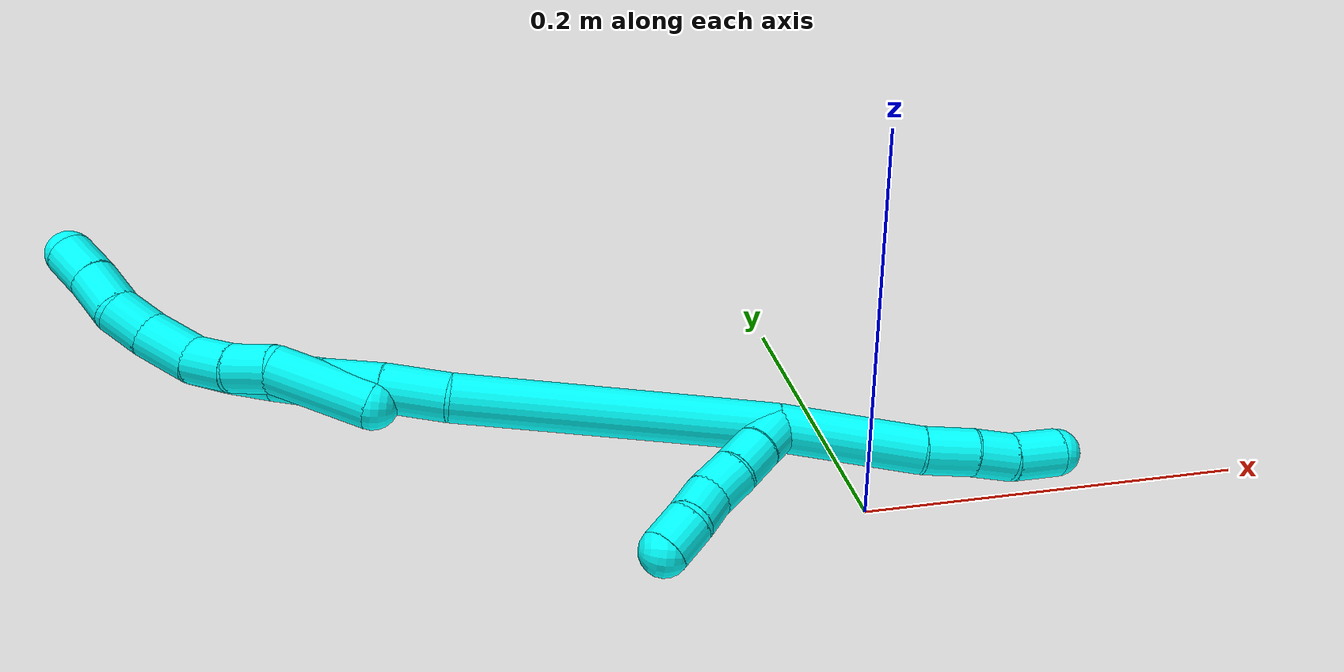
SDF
<sdf version="1.7">
 <world name="default">
  <model name="3">
   <static>0</static>
   <link name="3">
    <collision name="collision-cylinder-e_1_2_8">
     <pose>-0.001079 -0.003139 -0.037483 3.05804 -0.028667 -0.660728</pose>
     <geometry><cylinder><radius>0.0125</radius><length>0.075258</length></cylinder></geometry>
     <surface>
      <friction><ode><mu>1.16</mu><mu2>1.16</mu2><slip1>0</slip1><slip2>0</slip2></ode></friction>
      <contact><ode><kp>1e+06</kp><kd>1</kd><max_vel>0</max_vel><min_depth>0.001</min_depth></ode></contact>
     </surface>
    </collision>
    <visual name="visual-cylinder-e_1_2_8">
     <pose>-0.001079 -0.003139 -0.037483 3.05804 -0.028667 -0.660728</pose>
     <geometry><cylinder><radius>0.0125</radius><length>0.075258</length></cylinder></geometry>
     <material><ambient>0.003922 1 0.996078 1</ambient></material>
    </visual>
    <collision name="collision-cylinder-e_2_8_9">
     <pose>-0.001828 -0.005573 -0.088649 -3.09008 0.024031 -0.872784</pose>
     <geometry><cylinder><radius>0.0125</radius><length>0.027413</length></cylinder></geometry>
     <surface>
      <friction><ode><mu>1.16</mu><mu2>1.16</mu2><slip1>0</slip1><slip2>0</slip2></ode></friction>
      <contact><ode><kp>1e+06</kp><kd>1</kd><max_vel>0</max_vel><min_depth>0.001</min_depth></ode></contact>
     </surface>
    </collision>
    <visual name="visual-cylinder-e_2_8_9">
     <pose>-0.001828 -0.005573 -0.088649 -3.09008 0.024031 -0.872784</pose>
     <geometry><cylinder><radius>0.0125</radius><length>0.027413</length></cylinder></geometry>
     <material><ambient>0.003922 1 0.996078 1</ambient></material>
    </visual>
    <collision name="collision-cylinder-e_3_9_10">
     <pose>-0.00223 -0.004145 -0.112755 -3.07244 -0.069939 1.58215</pose>
     <geometry><cylinder><radius>0.0125</radius><length>0.020944</length></cylinder></geometry>
     <surface>
      <friction><ode><mu>1.16</mu><mu2>1.16</mu2><slip1>0</slip1><slip2>0</slip2></ode></friction>
      <contact><ode><kp>1e+06</kp><kd>1</kd><max_vel>0</max_vel><min_depth>0.001</min_depth></ode></contact>
     </surface>
    </collision>
    <visual name="visual-cylinder-e_3_9_10">
     <pose>-0.00223 -0.004145 -0.112755 -3.07244 -0.069939 1.58215</pose>
     <geometry><cylinder><radius>0.0125</radius><length>0.020944</length></cylinder></geometry>
     <material><ambient>0.003922 1 0.996078 1</ambient></material>
    </visual>
    <collision name="collision-cylinder-e_4_10_6">
     <pose>-0.001833 -0.000539 -0.136 -2.92037 0.085685 -0.736721</pose>
     <geometry><cylinder><radius>0.0125</radius><length>0.026385</length></cylinder></geometry>
     <surface>
      <friction><ode><mu>1.16</mu><mu2>1.16</mu2><slip1>0</slip1><slip2>0</slip2></ode></friction>
      <contact><ode><kp>1e+06</kp><kd>1</kd><max_vel>0</max_vel><min_depth>0.001</min_depth></ode></contact>
     </surface>
    </collision>
    <visual name="visual-cylinder-e_4_10_6">
     <pose>-0.001833 -0.000539 -0.136 -2.92037 0.085685 -0.736721</pose>
     <geometry><cylinder><radius>0.0125</radius><length>0.026385</length></cylinder></geometry>
     <material><ambient>0.003922 1 0.996078 1</ambient></material>
    </visual>
    <collision name="collision-cylinder-e_1_2_11">
     <pose>-0.002275 -0.007803 0.005826 0.929414 -0.2295 -0.115434</pose>
     <geometry><cylinder><radius>0.0125</radius><length>0.02</length></cylinder></geometry>
     <surface>
      <friction><ode><mu>1.16</mu><mu2>1.16</mu2><slip1>0</slip1><slip2>0</slip2></ode></friction>
      <contact><ode><kp>1e+06</kp><kd>1</kd><max_vel>0</max_vel><min_depth>0.001</min_depth></ode></contact>
     </surface>
    </collision>
    <visual name="visual-cylinder-e_1_2_11">
     <pose>-0.002275 -0.007803 0.005826 0.929414 -0.2295 -0.115434</pose>
     <geometry><cylinder><radius>0.0125</radius><length>0.02</length></cylinder></geometry>
     <material><ambient>0.003922 1 0.996078 1</ambient></material>
    </visual>
    <collision name="collision-cylinder-e_2_11_12">
     <pose>-0.007482 -0.023082 0.017611 0.897912 -0.297613 -0.144198</pose>
     <geometry><cylinder><radius>0.0125</radius><length>0.02</length></cylinder></geometry>
     <surface>
      <friction><ode><mu>1.16</mu><mu2>1.16</mu2><slip1>0</slip1><slip2>0</slip2></ode></friction>
      <contact><ode><kp>1e+06</kp><kd>1</kd><max_vel>0</max_vel><min_depth>0.001</min_depth></ode></contact>
     </surface>
    </collision>
    <visual name="visual-cylinder-e_2_11_12">
     <pose>-0.007482 -0.023082 0.017611 0.897912 -0.297613 -0.144198</pose>
     <geometry><cylinder><radius>0.0125</radius><length>0.02</length></cylinder></geometry>
     <material><ambient>0.003922 1 0.996078 1</ambient></material>
    </visual>
    <collision name="collision-cylinder-e_3_12_13">
     <pose>-0.01417 -0.037089 0.030146 0.781886 -0.384997 -0.160324</pose>
     <geometry><cylinder><radius>0.0125</radius><length>0.02</length></cylinder></geometry>
     <surface>
      <friction><ode><mu>1.16</mu><mu2>1.16</mu2><slip1>0</slip1><slip2>0</slip2></ode></friction>
      <contact><ode><kp>1e+06</kp><kd>1</kd><max_vel>0</max_vel><min_depth>0.001</min_depth></ode></contact>
     </surface>
    </collision>
    <visual name="visual-cylinder-e_3_12_13">
     <pose>-0.01417 -0.037089 0.030146 0.781886 -0.384997 -0.160324</pose>
     <geometry><cylinder><radius>0.0125</radius><length>0.02</length></cylinder></geometry>
     <material><ambient>0.003922 1 0.996078 1</ambient></material>
    </visual>
    <collision name="collision-cylinder-e_4_13_14">
     <pose>-0.020142 -0.05207 0.041586 1.04853 -0.223518 -0.129606</pose>
     <geometry><cylinder><radius>0.0125</radius><length>0.02</length></cylinder></geometry>
     <surface>
      <friction><ode><mu>1.16</mu><mu2>1.16</mu2><slip1>0</slip1><slip2>0</slip2></ode></friction>
      <contact><ode><kp>1e+06</kp><kd>1</kd><max_vel>0</max_vel><min_depth>0.001</min_depth></ode></contact>
     </surface>
    </collision>
    <visual name="visual-cylinder-e_4_13_14">
     <pose>-0.020142 -0.05207 0.041586 1.04853 -0.223518 -0.129606</pose>
     <geometry><cylinder><radius>0.0125</radius><length>0.02</length></cylinder></geometry>
     <material><ambient>0.003922 1 0.996078 1</ambient></material>
    </visual>
    <collision name="collision-cylinder-e_5_14_5">
     <pose>-0.0266 -0.067426 0.052311 0.867008 -0.437944 -0.20529</pose>
     <geometry><cylinder><radius>0.0125</radius><length>0.02</length></cylinder></geometry>
     <surface>
      <friction><ode><mu>1.16</mu><mu2>1.16</mu2><slip1>0</slip1><slip2>0</slip2></ode></friction>
      <contact><ode><kp>1e+06</kp><kd>1</kd><max_vel>0</max_vel><min_depth>0.001</min_depth></ode></contact>
     </surface>
    </collision>
    <visual name="visual-cylinder-e_5_14_5">
     <pose>-0.0266 -0.067426 0.052311 0.867008 -0.437944 -0.20529</pose>
     <geometry><cylinder><radius>0.0125</radius><length>0.02</length></cylinder></geometry>
     <material><ambient>0.003922 1 0.996078 1</ambient></material>
    </visual>
    <collision name="collision-cylinder-e_1_2_15">
     <pose>-3.8e-05 -0.000196 0.082653 0.00237 -0.000457 -1e-06</pose>
     <geometry><cylinder><radius>0.0125</radius><length>0.165307</length></cylinder></geometry>
     <surface>
      <friction><ode><mu>1.16</mu><mu2>1.16</mu2><slip1>0</slip1><slip2>0</slip2></ode></friction>
      <contact><ode><kp>1e+06</kp><kd>1</kd><max_vel>0</max_vel><min_depth>0.001</min_depth></ode></contact>
     </surface>
    </collision>
    <visual name="visual-cylinder-e_1_2_15">
     <pose>-3.8e-05 -0.000196 0.082653 0.00237 -0.000457 -1e-06</pose>
     <geometry><cylinder><radius>0.0125</radius><length>0.165307</length></cylinder></geometry>
     <material><ambient>0.003922 1 0.996078 1</ambient></material>
    </visual>
    <collision name="collision-cylinder-e_2_15_16">
     <pose>-0.000651 0.002735 0.18203 -0.18484 -0.033833 0.003136</pose>
     <geometry><cylinder><radius>0.0125</radius><length>0.034046</length></cylinder></geometry>
     <surface>
      <friction><ode><mu>1.16</mu><mu2>1.16</mu2><slip1>0</slip1><slip2>0</slip2></ode></friction>
      <contact><ode><kp>1e+06</kp><kd>1</kd><max_vel>0</max_vel><min_depth>0.001</min_depth></ode></contact>
     </surface>
    </collision>
    <visual name="visual-cylinder-e_2_15_16">
     <pose>-0.000651 0.002735 0.18203 -0.18484 -0.033833 0.003136</pose>
     <geometry><cylinder><radius>0.0125</radius><length>0.034046</length></cylinder></geometry>
     <material><ambient>0.003922 1 0.996078 1</ambient></material>
    </visual>
    <collision name="collision-cylinder-e_3_16_17">
     <pose>-0.002702 0.008134 0.213934 -0.148585 -0.095793 0.007135</pose>
     <geometry><cylinder><radius>0.0125</radius><length>0.030842</length></cylinder></geometry>
     <surface>
      <friction><ode><mu>1.16</mu><mu2>1.16</mu2><slip1>0</slip1><slip2>0</slip2></ode></friction>
      <contact><ode><kp>1e+06</kp><kd>1</kd><max_vel>0</max_vel><min_depth>0.001</min_depth></ode></contact>
     </surface>
    </collision>
    <visual name="visual-cylinder-e_3_16_17">
     <pose>-0.002702 0.008134 0.213934 -0.148585 -0.095793 0.007135</pose>
     <geometry><cylinder><radius>0.0125</radius><length>0.030842</length></cylinder></geometry>
     <material><ambient>0.003922 1 0.996078 1</ambient></material>
    </visual>
    <collision name="collision-cylinder-e_4_17_18">
     <pose>-0.006133 0.015081 0.241444 -0.36241 -0.147263 0.027028</pose>
     <geometry><cylinder><radius>0.0125</radius><length>0.026658</length></cylinder></geometry>
     <surface>
      <friction><ode><mu>1.16</mu><mu2>1.16</mu2><slip1>0</slip1><slip2>0</slip2></ode></friction>
      <contact><ode><kp>1e+06</kp><kd>1</kd><max_vel>0</max_vel><min_depth>0.001</min_depth></ode></contact>
     </surface>
    </collision>
    <visual name="visual-cylinder-e_4_17_18">
     <pose>-0.006133 0.015081 0.241444 -0.36241 -0.147263 0.027028</pose>
     <geometry><cylinder><radius>0.0125</radius><length>0.026658</length></cylinder></geometry>
     <material><ambient>0.003922 1 0.996078 1</ambient></material>
    </visual>
    <collision name="collision-cylinder-e_5_18_19">
     <pose>-0.008064 0.021522 0.264898 -0.157481 0.002235 -0.000176</pose>
     <geometry><cylinder><radius>0.0125</radius><length>0.02253</length></cylinder></geometry>
     <surface>
      <friction><ode><mu>1.16</mu><mu2>1.16</mu2><slip1>0</slip1><slip2>0</slip2></ode></friction>
      <contact><ode><kp>1e+06</kp><kd>1</kd><max_vel>0</max_vel><min_depth>0.001</min_depth></ode></contact>
     </surface>
    </collision>
    <visual name="visual-cylinder-e_5_18_19">
     <pose>-0.008064 0.021522 0.264898 -0.157481 0.002235 -0.000176</pose>
     <geometry><cylinder><radius>0.0125</radius><length>0.02253</length></cylinder></geometry>
     <material><ambient>0.003922 1 0.996078 1</ambient></material>
    </visual>
    <collision name="collision-cylinder-e_6_19_1">
     <pose>-0.007935 0.026149 0.285927 -0.281179 0.010005 -0.001416</pose>
     <geometry><cylinder><radius>0.0125</radius><length>0.020617</length></cylinder></geometry>
     <surface>
      <friction><ode><mu>1.16</mu><mu2>1.16</mu2><slip1>0</slip1><slip2>0</slip2></ode></friction>
      <contact><ode><kp>1e+06</kp><kd>1</kd><max_vel>0</max_vel><min_depth>0.001</min_depth></ode></contact>
     </surface>
    </collision>
    <visual name="visual-cylinder-e_6_19_1">
     <pose>-0.007935 0.026149 0.285927 -0.281179 0.010005 -0.001416</pose>
     <geometry><cylinder><radius>0.0125</radius><length>0.020617</length></cylinder></geometry>
     <material><ambient>0.003922 1 0.996078 1</ambient></material>
    </visual>
    <collision name="collision-cylinder-e_1_1_20">
     <pose>-0.005231 0.035638 0.308415 -0.484767 0.180861 -0.044832</pose>
     <geometry><cylinder><radius>0.0125</radius><length>0.02892</length></cylinder></geometry>
     <surface>
      <friction><ode><mu>1.16</mu><mu2>1.16</mu2><slip1>0</slip1><slip2>0</slip2></ode></friction>
      <contact><ode><kp>1e+06</kp><kd>1</kd><max_vel>0</max_vel><min_depth>0.001</min_depth></ode></contact>
     </surface>
    </collision>
    <visual name="visual-cylinder-e_1_1_20">
     <pose>-0.005231 0.035638 0.308415 -0.484767 0.180861 -0.044832</pose>
     <geometry><cylinder><radius>0.0125</radius><length>0.02892</length></cylinder></geometry>
     <material><ambient>0.003922 1 0.996078 1</ambient></material>
    </visual>
    <collision name="collision-cylinder-e_2_20_21">
     <pose>0.000875 0.047188 0.330522 -0.477077 0.316069 -0.077465</pose>
     <geometry><cylinder><radius>0.0125</radius><length>0.022553</length></cylinder></geometry>
     <surface>
      <friction><ode><mu>1.16</mu><mu2>1.16</mu2><slip1>0</slip1><slip2>0</slip2></ode></friction>
      <contact><ode><kp>1e+06</kp><kd>1</kd><max_vel>0</max_vel><min_depth>0.001</min_depth></ode></contact>
     </surface>
    </collision>
    <visual name="visual-cylinder-e_2_20_21">
     <pose>0.000875 0.047188 0.330522 -0.477077 0.316069 -0.077465</pose>
     <geometry><cylinder><radius>0.0125</radius><length>0.022553</length></cylinder></geometry>
     <material><ambient>0.003922 1 0.996078 1</ambient></material>
    </visual>
    <collision name="collision-cylinder-e_3_21_22">
     <pose>0.008516 0.060639 0.348402 -0.795429 0.333415 -0.141146</pose>
     <geometry><cylinder><radius>0.0125</radius><length>0.025276</length></cylinder></geometry>
     <surface>
      <friction><ode><mu>1.16</mu><mu2>1.16</mu2><slip1>0</slip1><slip2>0</slip2></ode></friction>
      <contact><ode><kp>1e+06</kp><kd>1</kd><max_vel>0</max_vel><min_depth>0.001</min_depth></ode></contact>
     </surface>
    </collision>
    <visual name="visual-cylinder-e_3_21_22">
     <pose>0.008516 0.060639 0.348402 -0.795429 0.333415 -0.141146</pose>
     <geometry><cylinder><radius>0.0125</radius><length>0.025276</length></cylinder></geometry>
     <material><ambient>0.003922 1 0.996078 1</ambient></material>
    </visual>
    <collision name="collision-cylinder-e_4_22_4">
     <pose>0.015941 0.076661 0.365019 -0.73697 0.286759 -0.111373</pose>
     <geometry><cylinder><radius>0.0125</radius><length>0.02325</length></cylinder></geometry>
     <surface>
      <friction><ode><mu>1.16</mu><mu2>1.16</mu2><slip1>0</slip1><slip2>0</slip2></ode></friction>
      <contact><ode><kp>1e+06</kp><kd>1</kd><max_vel>0</max_vel><min_depth>0.001</min_depth></ode></contact>
     </surface>
    </collision>
    <visual name="visual-cylinder-e_4_22_4">
     <pose>0.015941 0.076661 0.365019 -0.73697 0.286759 -0.111373</pose>
     <geometry><cylinder><radius>0.0125</radius><length>0.02325</length></cylinder></geometry>
     <material><ambient>0.003922 1 0.996078 1</ambient></material>
    </visual>
    <collision name="collision-cylinder-e_1_1_23">
     <pose>-0.006659 0.024238 0.285587 2.70564 0.103437 0.459163</pose>
     <geometry><cylinder><radius>0.0125</radius><length>0.02272</length></cylinder></geometry>
     <surface>
      <friction><ode><mu>1.16</mu><mu2>1.16</mu2><slip1>0</slip1><slip2>0</slip2></ode></friction>
      <contact><ode><kp>1e+06</kp><kd>1</kd><max_vel>0</max_vel><min_depth>0.001</min_depth></ode></contact>
     </surface>
    </collision>
    <visual name="visual-cylinder-e_1_1_23">
     <pose>-0.006659 0.024238 0.285587 2.70564 0.103437 0.459163</pose>
     <geometry><cylinder><radius>0.0125</radius><length>0.02272</length></cylinder></geometry>
     <material><ambient>0.003922 1 0.996078 1</ambient></material>
    </visual>
    <collision name="collision-cylinder-e_2_23_24">
     <pose>-0.003033 0.016363 0.264336 2.86678 0.211284 1.30837</pose>
     <geometry><cylinder><radius>0.0125</radius><length>0.023396</length></cylinder></geometry>
     <surface>
      <friction><ode><mu>1.16</mu><mu2>1.16</mu2><slip1>0</slip1><slip2>0</slip2></ode></friction>
      <contact><ode><kp>1e+06</kp><kd>1</kd><max_vel>0</max_vel><min_depth>0.001</min_depth></ode></contact>
     </surface>
    </collision>
    <visual name="visual-cylinder-e_2_23_24">
     <pose>-0.003033 0.016363 0.264336 2.86678 0.211284 1.30837</pose>
     <geometry><cylinder><radius>0.0125</radius><length>0.023396</length></cylinder></geometry>
     <material><ambient>0.003922 1 0.996078 1</ambient></material>
    </visual>
    <collision name="collision-cylinder-e_3_24_3">
     <pose>-0.003536 0.004842 0.227906 2.82186 -0.109966 -0.657874</pose>
     <geometry><cylinder><radius>0.0125</radius><length>0.053884</length></cylinder></geometry>
     <surface>
      <friction><ode><mu>1.16</mu><mu2>1.16</mu2><slip1>0</slip1><slip2>0</slip2></ode></friction>
      <contact><ode><kp>1e+06</kp><kd>1</kd><max_vel>0</max_vel><min_depth>0.001</min_depth></ode></contact>
     </surface>
    </collision>
    <visual name="visual-cylinder-e_3_24_3">
     <pose>-0.003536 0.004842 0.227906 2.82186 -0.109966 -0.657874</pose>
     <geometry><cylinder><radius>0.0125</radius><length>0.053884</length></cylinder></geometry>
     <material><ambient>0.003922 1 0.996078 1</ambient></material>
    </visual>
    <collision name="collision-sphere-3">
     <pose>-0.006493 -0.003575 0.202484 0 -0 0</pose>
     <geometry><sphere><radius>0.0125</radius></sphere></geometry>
     <surface>
      <friction><ode><mu>1.16</mu><mu2>1.16</mu2><slip1>0</slip1><slip2>0</slip2></ode></friction>
      <contact><ode><kp>1e+06</kp><kd>1</kd><max_vel>0</max_vel><min_depth>0.001</min_depth></ode></contact>
     </surface>
    </collision>
    <visual name="visual-sphere-3">
     <pose>-0.006493 -0.003575 0.202484 0 -0 0</pose>
     <geometry><sphere><radius>0.0125</radius></sphere></geometry>
     <material><ambient>0.003922 1 0.996078 1</ambient></material>
    </visual>
    <collision name="collision-sphere-24">
     <pose>-0.00058 0.013259 0.253327 0 -0 0</pose>
     <geometry><sphere><radius>0.0125</radius></sphere></geometry>
     <surface>
      <friction><ode><mu>1.16</mu><mu2>1.16</mu2><slip1>0</slip1><slip2>0</slip2></ode></friction>
      <contact><ode><kp>1e+06</kp><kd>1</kd><max_vel>0</max_vel><min_depth>0.001</min_depth></ode></contact>
     </surface>
    </collision>
    <visual name="visual-sphere-24">
     <pose>-0.00058 0.013259 0.253327 0 -0 0</pose>
     <geometry><sphere><radius>0.0125</radius></sphere></geometry>
     <material><ambient>0.003922 1 0.996078 1</ambient></material>
    </visual>
    <collision name="collision-sphere-23">
     <pose>-0.005486 0.019467 0.275345 0 -0 0</pose>
     <geometry><sphere><radius>0.0125</radius></sphere></geometry>
     <surface>
      <friction><ode><mu>1.16</mu><mu2>1.16</mu2><slip1>0</slip1><slip2>0</slip2></ode></friction>
      <contact><ode><kp>1e+06</kp><kd>1</kd><max_vel>0</max_vel><min_depth>0.001</min_depth></ode></contact>
     </surface>
    </collision>
    <visual name="visual-sphere-23">
     <pose>-0.005486 0.019467 0.275345 0 -0 0</pose>
     <geometry><sphere><radius>0.0125</radius></sphere></geometry>
     <material><ambient>0.003922 1 0.996078 1</ambient></material>
    </visual>
    <collision name="collision-sphere-4">
     <pose>0.019229 0.084154 0.373276 0 -0 0</pose>
     <geometry><sphere><radius>0.0125</radius></sphere></geometry>
     <surface>
      <friction><ode><mu>1.16</mu><mu2>1.16</mu2><slip1>0</slip1><slip2>0</slip2></ode></friction>
      <contact><ode><kp>1e+06</kp><kd>1</kd><max_vel>0</max_vel><min_depth>0.001</min_depth></ode></contact>
     </surface>
    </collision>
    <visual name="visual-sphere-4">
     <pose>0.019229 0.084154 0.373276 0 -0 0</pose>
     <geometry><sphere><radius>0.0125</radius></sphere></geometry>
     <material><ambient>0.003922 1 0.996078 1</ambient></material>
    </visual>
    <collision name="collision-sphere-22">
     <pose>0.012652 0.069167 0.356762 0 -0 0</pose>
     <geometry><sphere><radius>0.0125</radius></sphere></geometry>
     <surface>
      <friction><ode><mu>1.16</mu><mu2>1.16</mu2><slip1>0</slip1><slip2>0</slip2></ode></friction>
      <contact><ode><kp>1e+06</kp><kd>1</kd><max_vel>0</max_vel><min_depth>0.001</min_depth></ode></contact>
     </surface>
    </collision>
    <visual name="visual-sphere-22">
     <pose>0.012652 0.069167 0.356762 0 -0 0</pose>
     <geometry><sphere><radius>0.0125</radius></sphere></geometry>
     <material><ambient>0.003922 1 0.996078 1</ambient></material>
    </visual>
    <collision name="collision-sphere-21">
     <pose>0.00438 0.05211 0.340043 0 -0 0</pose>
     <geometry><sphere><radius>0.0125</radius></sphere></geometry>
     <surface>
      <friction><ode><mu>1.16</mu><mu2>1.16</mu2><slip1>0</slip1><slip2>0</slip2></ode></friction>
      <contact><ode><kp>1e+06</kp><kd>1</kd><max_vel>0</max_vel><min_depth>0.001</min_depth></ode></contact>
     </surface>
    </collision>
    <visual name="visual-sphere-21">
     <pose>0.00438 0.05211 0.340043 0 -0 0</pose>
     <geometry><sphere><radius>0.0125</radius></sphere></geometry>
     <material><ambient>0.003922 1 0.996078 1</ambient></material>
    </visual>
    <collision name="collision-sphere-20">
     <pose>-0.00263 0.042267 0.321 0 -0 0</pose>
     <geometry><sphere><radius>0.0125</radius></sphere></geometry>
     <surface>
      <friction><ode><mu>1.16</mu><mu2>1.16</mu2><slip1>0</slip1><slip2>0</slip2></ode></friction>
      <contact><ode><kp>1e+06</kp><kd>1</kd><max_vel>0</max_vel><min_depth>0.001</min_depth></ode></contact>
     </surface>
    </collision>
    <visual name="visual-sphere-20">
     <pose>-0.00263 0.042267 0.321 0 -0 0</pose>
     <geometry><sphere><radius>0.0125</radius></sphere></geometry>
     <material><ambient>0.003922 1 0.996078 1</ambient></material>
    </visual>
    <collision name="collision-sphere-11">
     <pose>-0.00455 -0.015605 0.011652 0 -0 0</pose>
     <geometry><sphere><radius>0.0125</radius></sphere></geometry>
     <surface>
      <friction><ode><mu>1.16</mu><mu2>1.16</mu2><slip1>0</slip1><slip2>0</slip2></ode></friction>
      <contact><ode><kp>1e+06</kp><kd>1</kd><max_vel>0</max_vel><min_depth>0.001</min_depth></ode></contact>
     </surface>
    </collision>
    <visual name="visual-sphere-11">
     <pose>-0.00455 -0.015605 0.011652 0 -0 0</pose>
     <geometry><sphere><radius>0.0125</radius></sphere></geometry>
     <material><ambient>0.003922 1 0.996078 1</ambient></material>
    </visual>
    <collision name="collision-sphere-6">
     <pose>-0.000704 0.002345 -0.148824 0 -0 0</pose>
     <geometry><sphere><radius>0.0125</radius></sphere></geometry>
     <surface>
      <friction><ode><mu>1.16</mu><mu2>1.16</mu2><slip1>0</slip1><slip2>0</slip2></ode></friction>
      <contact><ode><kp>1e+06</kp><kd>1</kd><max_vel>0</max_vel><min_depth>0.001</min_depth></ode></contact>
     </surface>
    </collision>
    <visual name="visual-sphere-6">
     <pose>-0.000704 0.002345 -0.148824 0 -0 0</pose>
     <geometry><sphere><radius>0.0125</radius></sphere></geometry>
     <material><ambient>0.003922 1 0.996078 1</ambient></material>
    </visual>
    <collision name="collision-sphere-10">
     <pose>-0.002962 -0.003423 -0.123176 0 -0 0</pose>
     <geometry><sphere><radius>0.0125</radius></sphere></geometry>
     <surface>
      <friction><ode><mu>1.16</mu><mu2>1.16</mu2><slip1>0</slip1><slip2>0</slip2></ode></friction>
      <contact><ode><kp>1e+06</kp><kd>1</kd><max_vel>0</max_vel><min_depth>0.001</min_depth></ode></contact>
     </surface>
    </collision>
    <visual name="visual-sphere-10">
     <pose>-0.002962 -0.003423 -0.123176 0 -0 0</pose>
     <geometry><sphere><radius>0.0125</radius></sphere></geometry>
     <material><ambient>0.003922 1 0.996078 1</ambient></material>
    </visual>
    <collision name="collision-sphere-9">
     <pose>-0.001498 -0.004867 -0.102334 0 -0 0</pose>
     <geometry><sphere><radius>0.0125</radius></sphere></geometry>
     <surface>
      <friction><ode><mu>1.16</mu><mu2>1.16</mu2><slip1>0</slip1><slip2>0</slip2></ode></friction>
      <contact><ode><kp>1e+06</kp><kd>1</kd><max_vel>0</max_vel><min_depth>0.001</min_depth></ode></contact>
     </surface>
    </collision>
    <visual name="visual-sphere-9">
     <pose>-0.001498 -0.004867 -0.102334 0 -0 0</pose>
     <geometry><sphere><radius>0.0125</radius></sphere></geometry>
     <material><ambient>0.003922 1 0.996078 1</ambient></material>
    </visual>
    <collision name="collision-sphere-2">
     <geometry><sphere><radius>0.0125</radius></sphere></geometry>
     <surface>
      <friction><ode><mu>1.16</mu><mu2>1.16</mu2><slip1>0</slip1><slip2>0</slip2></ode></friction>
      <contact><ode><kp>1e+06</kp><kd>1</kd><max_vel>0</max_vel><min_depth>0.001</min_depth></ode></contact>
     </surface>
    </collision>
    <visual name="visual-sphere-2">
     <geometry><sphere><radius>0.0125</radius></sphere></geometry>
     <material><ambient>0.003922 1 0.996078 1</ambient></material>
    </visual>
    <collision name="collision-sphere-19">
     <pose>-0.008038 0.023289 0.276023 0 -0 0</pose>
     <geometry><sphere><radius>0.0125</radius></sphere></geometry>
     <surface>
      <friction><ode><mu>1.16</mu><mu2>1.16</mu2><slip1>0</slip1><slip2>0</slip2></ode></friction>
      <contact><ode><kp>1e+06</kp><kd>1</kd><max_vel>0</max_vel><min_depth>0.001</min_depth></ode></contact>
     </surface>
    </collision>
    <visual name="visual-sphere-19">
     <pose>-0.008038 0.023289 0.276023 0 -0 0</pose>
     <geometry><sphere><radius>0.0125</radius></sphere></geometry>
     <material><ambient>0.003922 1 0.996078 1</ambient></material>
    </visual>
    <collision name="collision-sphere-8">
     <pose>-0.002157 -0.006278 -0.074965 0 -0 0</pose>
     <geometry><sphere><radius>0.0125</radius></sphere></geometry>
     <surface>
      <friction><ode><mu>1.16</mu><mu2>1.16</mu2><slip1>0</slip1><slip2>0</slip2></ode></friction>
      <contact><ode><kp>1e+06</kp><kd>1</kd><max_vel>0</max_vel><min_depth>0.001</min_depth></ode></contact>
     </surface>
    </collision>
    <visual name="visual-sphere-8">
     <pose>-0.002157 -0.006278 -0.074965 0 -0 0</pose>
     <geometry><sphere><radius>0.0125</radius></sphere></geometry>
     <material><ambient>0.003922 1 0.996078 1</ambient></material>
    </visual>
    <collision name="collision-sphere-12">
     <pose>-0.010415 -0.030558 0.023569 0 -0 0</pose>
     <geometry><sphere><radius>0.0125</radius></sphere></geometry>
     <surface>
      <friction><ode><mu>1.16</mu><mu2>1.16</mu2><slip1>0</slip1><slip2>0</slip2></ode></friction>
      <contact><ode><kp>1e+06</kp><kd>1</kd><max_vel>0</max_vel><min_depth>0.001</min_depth></ode></contact>
     </surface>
    </collision>
    <visual name="visual-sphere-12">
     <pose>-0.010415 -0.030558 0.023569 0 -0 0</pose>
     <geometry><sphere><radius>0.0125</radius></sphere></geometry>
     <material><ambient>0.003922 1 0.996078 1</ambient></material>
    </visual>
    <collision name="collision-sphere-13">
     <pose>-0.017926 -0.043619 0.036722 0 -0 0</pose>
     <geometry><sphere><radius>0.0125</radius></sphere></geometry>
     <surface>
      <friction><ode><mu>1.16</mu><mu2>1.16</mu2><slip1>0</slip1><slip2>0</slip2></ode></friction>
      <contact><ode><kp>1e+06</kp><kd>1</kd><max_vel>0</max_vel><min_depth>0.001</min_depth></ode></contact>
     </surface>
    </collision>
    <visual name="visual-sphere-13">
     <pose>-0.017926 -0.043619 0.036722 0 -0 0</pose>
     <geometry><sphere><radius>0.0125</radius></sphere></geometry>
     <material><ambient>0.003922 1 0.996078 1</ambient></material>
    </visual>
    <collision name="collision-sphere-14">
     <pose>-0.022359 -0.060522 0.046451 0 -0 0</pose>
     <geometry><sphere><radius>0.0125</radius></sphere></geometry>
     <surface>
      <friction><ode><mu>1.16</mu><mu2>1.16</mu2><slip1>0</slip1><slip2>0</slip2></ode></friction>
      <contact><ode><kp>1e+06</kp><kd>1</kd><max_vel>0</max_vel><min_depth>0.001</min_depth></ode></contact>
     </surface>
    </collision>
    <visual name="visual-sphere-14">
     <pose>-0.022359 -0.060522 0.046451 0 -0 0</pose>
     <geometry><sphere><radius>0.0125</radius></sphere></geometry>
     <material><ambient>0.003922 1 0.996078 1</ambient></material>
    </visual>
    <collision name="collision-sphere-5">
     <pose>-0.030841 -0.074331 0.058172 0 -0 0</pose>
     <geometry><sphere><radius>0.0125</radius></sphere></geometry>
     <surface>
      <friction><ode><mu>1.16</mu><mu2>1.16</mu2><slip1>0</slip1><slip2>0</slip2></ode></friction>
      <contact><ode><kp>1e+06</kp><kd>1</kd><max_vel>0</max_vel><min_depth>0.001</min_depth></ode></contact>
     </surface>
    </collision>
    <visual name="visual-sphere-5">
     <pose>-0.030841 -0.074331 0.058172 0 -0 0</pose>
     <geometry><sphere><radius>0.0125</radius></sphere></geometry>
     <material><ambient>0.003922 1 0.996078 1</ambient></material>
    </visual>
    <collision name="collision-sphere-15">
     <pose>-7.6e-05 -0.000392 0.165306 0 -0 0</pose>
     <geometry><sphere><radius>0.0125</radius></sphere></geometry>
     <surface>
      <friction><ode><mu>1.16</mu><mu2>1.16</mu2><slip1>0</slip1><slip2>0</slip2></ode></friction>
      <contact><ode><kp>1e+06</kp><kd>1</kd><max_vel>0</max_vel><min_depth>0.001</min_depth></ode></contact>
     </surface>
    </collision>
    <visual name="visual-sphere-15">
     <pose>-7.6e-05 -0.000392 0.165306 0 -0 0</pose>
     <geometry><sphere><radius>0.0125</radius></sphere></geometry>
     <material><ambient>0.003922 1 0.996078 1</ambient></material>
    </visual>
    <collision name="collision-sphere-16">
     <pose>-0.001227 0.005862 0.198753 0 -0 0</pose>
     <geometry><sphere><radius>0.0125</radius></sphere></geometry>
     <surface>
      <friction><ode><mu>1.16</mu><mu2>1.16</mu2><slip1>0</slip1><slip2>0</slip2></ode></friction>
      <contact><ode><kp>1e+06</kp><kd>1</kd><max_vel>0</max_vel><min_depth>0.001</min_depth></ode></contact>
     </surface>
    </collision>
    <visual name="visual-sphere-16">
     <pose>-0.001227 0.005862 0.198753 0 -0 0</pose>
     <geometry><sphere><radius>0.0125</radius></sphere></geometry>
     <material><ambient>0.003922 1 0.996078 1</ambient></material>
    </visual>
    <collision name="collision-sphere-17">
     <pose>-0.004177 0.010407 0.229115 0 -0 0</pose>
     <geometry><sphere><radius>0.0125</radius></sphere></geometry>
     <surface>
      <friction><ode><mu>1.16</mu><mu2>1.16</mu2><slip1>0</slip1><slip2>0</slip2></ode></friction>
      <contact><ode><kp>1e+06</kp><kd>1</kd><max_vel>0</max_vel><min_depth>0.001</min_depth></ode></contact>
     </surface>
    </collision>
    <visual name="visual-sphere-17">
     <pose>-0.004177 0.010407 0.229115 0 -0 0</pose>
     <geometry><sphere><radius>0.0125</radius></sphere></geometry>
     <material><ambient>0.003922 1 0.996078 1</ambient></material>
    </visual>
    <collision name="collision-sphere-18">
     <pose>-0.008089 0.019756 0.253772 0 -0 0</pose>
     <geometry><sphere><radius>0.0125</radius></sphere></geometry>
     <surface>
      <friction><ode><mu>1.16</mu><mu2>1.16</mu2><slip1>0</slip1><slip2>0</slip2></ode></friction>
      <contact><ode><kp>1e+06</kp><kd>1</kd><max_vel>0</max_vel><min_depth>0.001</min_depth></ode></contact>
     </surface>
    </collision>
    <visual name="visual-sphere-18">
     <pose>-0.008089 0.019756 0.253772 0 -0 0</pose>
     <geometry><sphere><radius>0.0125</radius></sphere></geometry>
     <material><ambient>0.003922 1 0.996078 1</ambient></material>
    </visual>
    <collision name="collision-sphere-1">
     <pose>-0.007832 0.02901 0.29583 0 -0 0</pose>
     <geometry><sphere><radius>0.0125</radius></sphere></geometry>
     <surface>
      <friction><ode><mu>1.16</mu><mu2>1.16</mu2><slip1>0</slip1><slip2>0</slip2></ode></friction>
      <contact><ode><kp>1e+06</kp><kd>1</kd><max_vel>0</max_vel><min_depth>0.001</min_depth></ode></contact>
     </surface>
    </collision>
    <visual name="visual-sphere-1">
     <pose>-0.007832 0.02901 0.29583 0 -0 0</pose>
     <geometry><sphere><radius>0.0125</radius></sphere></geometry>
     <material><ambient>0.003922 1 0.996078 1</ambient></material>
    </visual>
    <inertial>
     <pose>-0.002958 0.00547 0.126836 0 -0 0</pose>
     <mass>0.75</mass>
     <inertia>
      <ixx>0.000426</ixx>
      <ixy>0</ixy>
      <ixz>0</ixz>
      <iyy>0.000327</iyy>
      <iyz>0</iyz>
      <izz>2.4e-05</izz>
     </inertia>
    </inertial>
   </link>
   <pose>-0.037064 0.036209 0.032605 -0.133937 -1.43111 -0.007926</pose>
  </model>
 </world>
</sdf>
